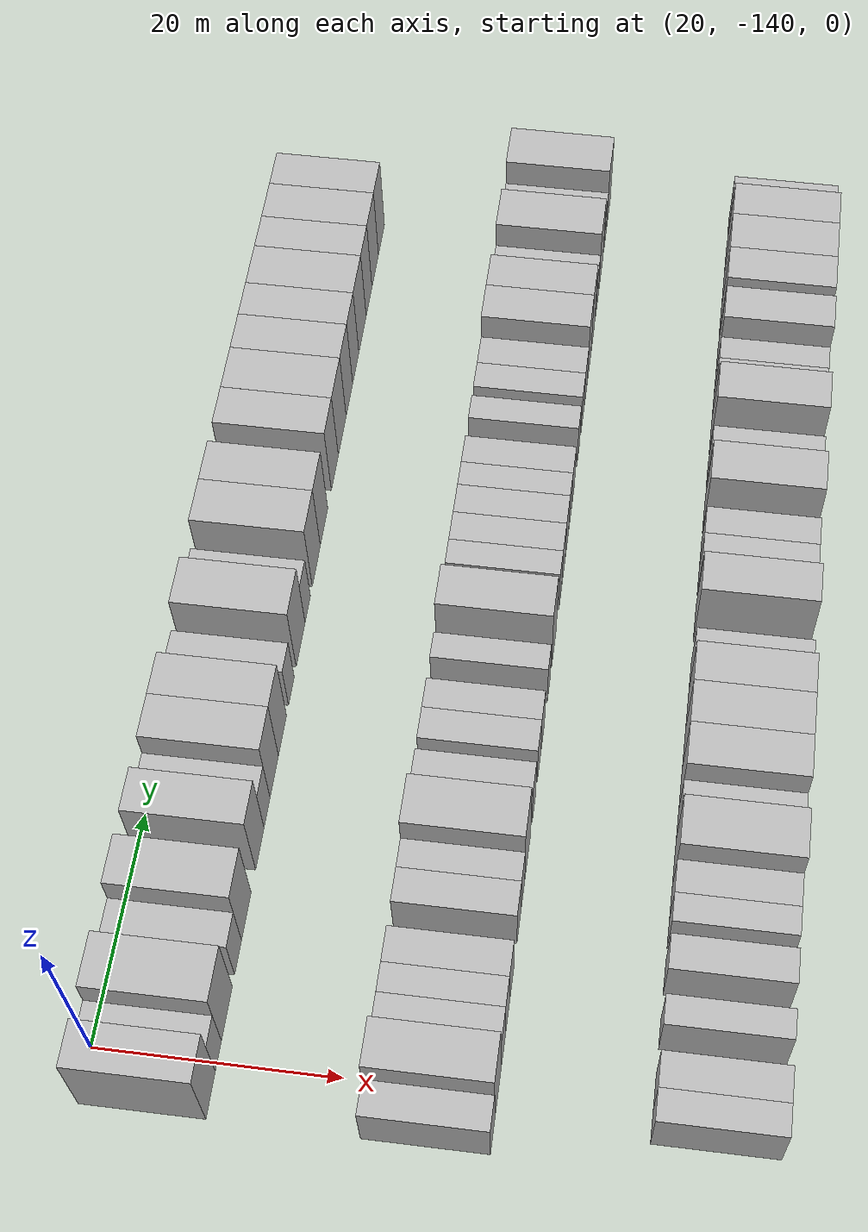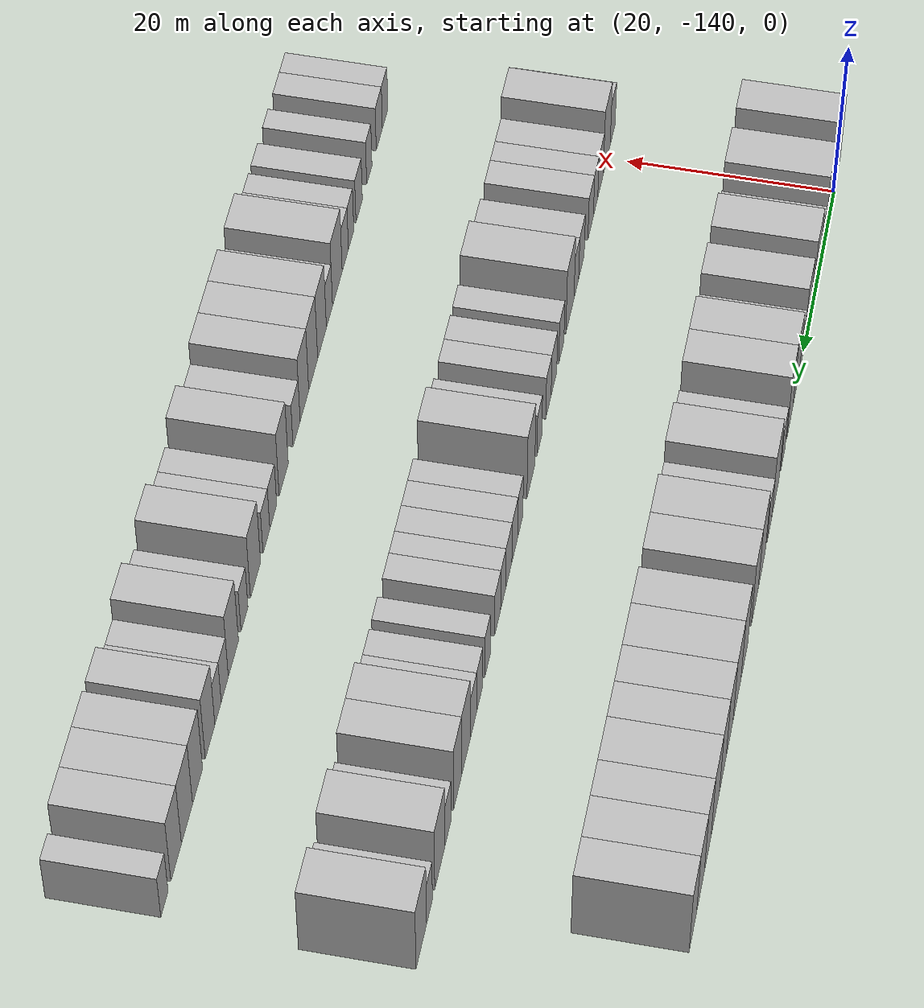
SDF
<sdf version="1.6">
 <world name="default">
  <model name="building_29">
   <static>1</static>
   <pose>25.0000 -142.5666 0 0.000000 0.000000 0.000000</pose>
   <link name="link">
    <pose>0 0 4.50 0 0 0</pose>
    <collision name="collision"><geometry><box><size>10.0000 3.7375 9.0000</size></box></geometry></collision>
    <visual name="visual">
     <cast_shadows>0</cast_shadows>
     <geometry><box><size>10.0000 3.7375 9.0000</size></box></geometry>
     <material>
      <script>
       <uri>model://HANNAS_wall/materials/scripts</uri>
       <uri>model://HANNAS_wall/materials/textures</uri>
       <name>vrc/HANNAS_wall</name>
      </script>
     </material>
    </visual>
   </link>
  </model>
  <model name="building_30">
   <static>1</static>
   <pose>25.0000 -139.4617 0 0.000000 0.000000 0.000000</pose>
   <link name="link">
    <pose>0 0 3.00 0 0 0</pose>
    <collision name="collision"><geometry><box><size>10.0000 2.4724 6.0000</size></box></geometry></collision>
    <visual name="visual">
     <cast_shadows>0</cast_shadows>
     <geometry><box><size>10.0000 2.4724 6.0000</size></box></geometry>
     <material>
      <script>
       <uri>model://HANNAS_wall/materials/scripts</uri>
       <uri>model://HANNAS_wall/materials/textures</uri>
       <name>vrc/HANNAS_wall</name>
      </script>
     </material>
    </visual>
   </link>
  </model>
  <model name="building_31">
   <static>1</static>
   <pose>25.0000 -135.9966 0 0.000000 0.000000 0.000000</pose>
   <link name="link">
    <pose>0 0 4.50 0 0 0</pose>
    <collision name="collision"><geometry><box><size>10.0000 4.4577 9.0000</size></box></geometry></collision>
    <visual name="visual">
     <cast_shadows>0</cast_shadows>
     <geometry><box><size>10.0000 4.4577 9.0000</size></box></geometry>
     <material>
      <script>
       <uri>model://HANNAS_wall/materials/scripts</uri>
       <uri>model://HANNAS_wall/materials/textures</uri>
       <name>vrc/HANNAS_wall</name>
      </script>
     </material>
    </visual>
   </link>
  </model>
  <model name="building_32">
   <static>1</static>
   <pose>25.0000 -131.3176 0 0.000000 0.000000 0.000000</pose>
   <link name="link">
    <pose>0 0 3.00 0 0 0</pose>
    <collision name="collision"><geometry><box><size>10.0000 2.9004 6.0000</size></box></geometry></collision>
    <visual name="visual">
     <cast_shadows>0</cast_shadows>
     <geometry><box><size>10.0000 2.9004 6.0000</size></box></geometry>
     <material>
      <script>
       <uri>model://HANNAS_wall/materials/scripts</uri>
       <uri>model://HANNAS_wall/materials/textures</uri>
       <name>vrc/HANNAS_wall</name>
      </script>
     </material>
    </visual>
   </link>
  </model>
  <model name="building_33">
   <static>1</static>
   <pose>25.0000 -127.7929 0 0.000000 0.000000 0.000000</pose>
   <link name="link">
    <pose>0 0 4.50 0 0 0</pose>
    <collision name="collision"><geometry><box><size>10.0000 4.1490 9.0000</size></box></geometry></collision>
    <visual name="visual">
     <cast_shadows>0</cast_shadows>
     <geometry><box><size>10.0000 4.1490 9.0000</size></box></geometry>
     <material>
      <script>
       <uri>model://HANNAS_wall/materials/scripts</uri>
       <uri>model://HANNAS_wall/materials/textures</uri>
       <name>vrc/HANNAS_wall</name>
      </script>
     </material>
    </visual>
   </link>
  </model>
  <model name="building_34">
   <static>1</static>
   <pose>25.0000 -121.8239 0 0.000000 0.000000 0.000000</pose>
   <link name="link">
    <pose>0 0 4.50 0 0 0</pose>
    <collision name="collision"><geometry><box><size>10.0000 3.7891 9.0000</size></box></geometry></collision>
    <visual name="visual">
     <cast_shadows>0</cast_shadows>
     <geometry><box><size>10.0000 3.7891 9.0000</size></box></geometry>
     <material>
      <script>
       <uri>model://HANNAS_wall/materials/scripts</uri>
       <uri>model://HANNAS_wall/materials/textures</uri>
       <name>vrc/HANNAS_wall</name>
      </script>
     </material>
    </visual>
   </link>
  </model>
  <model name="building_35">
   <static>1</static>
   <pose>25.0000 -118.5579 0 0.000000 0.000000 0.000000</pose>
   <link name="link">
    <pose>0 0 3.00 0 0 0</pose>
    <collision name="collision"><geometry><box><size>10.0000 2.7430 6.0000</size></box></geometry></collision>
    <visual name="visual">
     <cast_shadows>0</cast_shadows>
     <geometry><box><size>10.0000 2.7430 6.0000</size></box></geometry>
     <material>
      <script>
       <uri>model://HANNAS_wall/materials/scripts</uri>
       <uri>model://HANNAS_wall/materials/textures</uri>
       <name>vrc/HANNAS_wall</name>
      </script>
     </material>
    </visual>
   </link>
  </model>
  <model name="building_36">
   <static>1</static>
   <pose>25.0000 -115.2265 0 0.000000 0.000000 0.000000</pose>
   <link name="link">
    <pose>0 0 4.50 0 0 0</pose>
    <collision name="collision"><geometry><box><size>10.0000 3.9197 9.0000</size></box></geometry></collision>
    <visual name="visual">
     <cast_shadows>0</cast_shadows>
     <geometry><box><size>10.0000 3.9197 9.0000</size></box></geometry>
     <material>
      <script>
       <uri>model://HANNAS_wall/materials/scripts</uri>
       <uri>model://HANNAS_wall/materials/textures</uri>
       <name>vrc/HANNAS_wall</name>
      </script>
     </material>
    </visual>
   </link>
  </model>
  <model name="building_37">
   <static>1</static>
   <pose>25.0000 -111.3429 0 0.000000 0.000000 0.000000</pose>
   <link name="link">
    <pose>0 0 4.50 0 0 0</pose>
    <collision name="collision"><geometry><box><size>10.0000 3.8475 9.0000</size></box></geometry></collision>
    <visual name="visual">
     <cast_shadows>0</cast_shadows>
     <geometry><box><size>10.0000 3.8475 9.0000</size></box></geometry>
     <material>
      <script>
       <uri>model://HANNAS_wall/materials/scripts</uri>
       <uri>model://HANNAS_wall/materials/textures</uri>
       <name>vrc/HANNAS_wall</name>
      </script>
     </material>
    </visual>
   </link>
  </model>
  <model name="building_38">
   <static>1</static>
   <pose>25.0000 -107.0256 0 0.000000 0.000000 0.000000</pose>
   <link name="link">
    <pose>0 0 3.00 0 0 0</pose>
    <collision name="collision"><geometry><box><size>10.0000 2.7871 6.0000</size></box></geometry></collision>
    <visual name="visual">
     <cast_shadows>0</cast_shadows>
     <geometry><box><size>10.0000 2.7871 6.0000</size></box></geometry>
     <material>
      <script>
       <uri>model://HANNAS_wall/materials/scripts</uri>
       <uri>model://HANNAS_wall/materials/textures</uri>
       <name>vrc/HANNAS_wall</name>
      </script>
     </material>
    </visual>
   </link>
  </model>
  <model name="building_39">
   <static>1</static>
   <pose>25.0000 -102.3969 0 0.000000 0.000000 0.000000</pose>
   <link name="link">
    <pose>0 0 4.50 0 0 0</pose>
    <collision name="collision"><geometry><box><size>10.0000 4.4704 9.0000</size></box></geometry></collision>
    <visual name="visual">
     <cast_shadows>0</cast_shadows>
     <geometry><box><size>10.0000 4.4704 9.0000</size></box></geometry>
     <material>
      <script>
       <uri>model://HANNAS_wall/materials/scripts</uri>
       <uri>model://HANNAS_wall/materials/textures</uri>
       <name>vrc/HANNAS_wall</name>
      </script>
     </material>
    </visual>
   </link>
  </model>
  <model name="building_40">
   <static>1</static>
   <pose>25.0000 -98.7976 0 0.000000 0.000000 0.000000</pose>
   <link name="link">
    <pose>0 0 3.00 0 0 0</pose>
    <collision name="collision"><geometry><box><size>10.0000 2.7282 6.0000</size></box></geometry></collision>
    <visual name="visual">
     <cast_shadows>0</cast_shadows>
     <geometry><box><size>10.0000 2.7282 6.0000</size></box></geometry>
     <material>
      <script>
       <uri>model://HANNAS_wall/materials/scripts</uri>
       <uri>model://HANNAS_wall/materials/textures</uri>
       <name>vrc/HANNAS_wall</name>
      </script>
     </material>
    </visual>
   </link>
  </model>
  <model name="building_41">
   <static>1</static>
   <pose>25.0000 -94.2964 0 0.000000 0.000000 0.000000</pose>
   <link name="link">
    <pose>0 0 4.50 0 0 0</pose>
    <collision name="collision"><geometry><box><size>10.0000 4.2742 9.0000</size></box></geometry></collision>
    <visual name="visual">
     <cast_shadows>0</cast_shadows>
     <geometry><box><size>10.0000 4.2742 9.0000</size></box></geometry>
     <material>
      <script>
       <uri>model://HANNAS_wall/materials/scripts</uri>
       <uri>model://HANNAS_wall/materials/textures</uri>
       <name>vrc/HANNAS_wall</name>
      </script>
     </material>
    </visual>
   </link>
  </model>
  <model name="building_42">
   <static>1</static>
   <pose>25.0000 -90.1512 0 0.000000 0.000000 0.000000</pose>
   <link name="link">
    <pose>0 0 4.50 0 0 0</pose>
    <collision name="collision"><geometry><box><size>10.0000 4.0164 9.0000</size></box></geometry></collision>
    <visual name="visual">
     <cast_shadows>0</cast_shadows>
     <geometry><box><size>10.0000 4.0164 9.0000</size></box></geometry>
     <material>
      <script>
       <uri>model://HANNAS_wall/materials/scripts</uri>
       <uri>model://HANNAS_wall/materials/textures</uri>
       <name>vrc/HANNAS_wall</name>
      </script>
     </material>
    </visual>
   </link>
  </model>
  <model name="building_43">
   <static>1</static>
   <pose>25.0000 -84.1910 0 0.000000 0.000000 0.000000</pose>
   <link name="link">
    <pose>0 0 4.50 0 0 0</pose>
    <collision name="collision"><geometry><box><size>10.0000 3.9040 9.0000</size></box></geometry></collision>
    <visual name="visual">
     <cast_shadows>0</cast_shadows>
     <geometry><box><size>10.0000 3.9040 9.0000</size></box></geometry>
     <material>
      <script>
       <uri>model://HANNAS_wall/materials/scripts</uri>
       <uri>model://HANNAS_wall/materials/textures</uri>
       <name>vrc/HANNAS_wall</name>
      </script>
     </material>
    </visual>
   </link>
  </model>
  <model name="building_44">
   <static>1</static>
   <pose>25.0000 -80.0075 0 0.000000 0.000000 0.000000</pose>
   <link name="link">
    <pose>0 0 4.50 0 0 0</pose>
    <collision name="collision"><geometry><box><size>10.0000 4.4628 9.0000</size></box></geometry></collision>
    <visual name="visual">
     <cast_shadows>0</cast_shadows>
     <geometry><box><size>10.0000 4.4628 9.0000</size></box></geometry>
     <material>
      <script>
       <uri>model://HANNAS_wall/materials/scripts</uri>
       <uri>model://HANNAS_wall/materials/textures</uri>
       <name>vrc/HANNAS_wall</name>
      </script>
     </material>
    </visual>
   </link>
  </model>
  <model name="building_45">
   <static>1</static>
   <pose>25.0000 -75.8572 0 0.000000 0.000000 0.000000</pose>
   <link name="link">
    <pose>0 0 4.50 0 0 0</pose>
    <collision name="collision"><geometry><box><size>10.0000 3.8377 9.0000</size></box></geometry></collision>
    <visual name="visual">
     <cast_shadows>0</cast_shadows>
     <geometry><box><size>10.0000 3.8377 9.0000</size></box></geometry>
     <material>
      <script>
       <uri>model://HANNAS_wall/materials/scripts</uri>
       <uri>model://HANNAS_wall/materials/textures</uri>
       <name>vrc/HANNAS_wall</name>
      </script>
     </material>
    </visual>
   </link>
  </model>
  <model name="building_46">
   <static>1</static>
   <pose>25.0000 -72.0961 0 0.000000 0.000000 0.000000</pose>
   <link name="link">
    <pose>0 0 4.50 0 0 0</pose>
    <collision name="collision"><geometry><box><size>10.0000 3.6846 9.0000</size></box></geometry></collision>
    <visual name="visual">
     <cast_shadows>0</cast_shadows>
     <geometry><box><size>10.0000 3.6846 9.0000</size></box></geometry>
     <material>
      <script>
       <uri>model://HANNAS_wall/materials/scripts</uri>
       <uri>model://HANNAS_wall/materials/textures</uri>
       <name>vrc/HANNAS_wall</name>
      </script>
     </material>
    </visual>
   </link>
  </model>
  <model name="building_47">
   <static>1</static>
   <pose>25.0000 -68.0348 0 0.000000 0.000000 0.000000</pose>
   <link name="link">
    <pose>0 0 4.50 0 0 0</pose>
    <collision name="collision"><geometry><box><size>10.0000 4.4380 9.0000</size></box></geometry></collision>
    <visual name="visual">
     <cast_shadows>0</cast_shadows>
     <geometry><box><size>10.0000 4.4380 9.0000</size></box></geometry>
     <material>
      <script>
       <uri>model://HANNAS_wall/materials/scripts</uri>
       <uri>model://HANNAS_wall/materials/textures</uri>
       <name>vrc/HANNAS_wall</name>
      </script>
     </material>
    </visual>
   </link>
  </model>
  <model name="building_48">
   <static>1</static>
   <pose>25.0000 -64.0015 0 0.000000 0.000000 0.000000</pose>
   <link name="link">
    <pose>0 0 4.50 0 0 0</pose>
    <collision name="collision"><geometry><box><size>10.0000 3.6286 9.0000</size></box></geometry></collision>
    <visual name="visual">
     <cast_shadows>0</cast_shadows>
     <geometry><box><size>10.0000 3.6286 9.0000</size></box></geometry>
     <material>
      <script>
       <uri>model://HANNAS_wall/materials/scripts</uri>
       <uri>model://HANNAS_wall/materials/textures</uri>
       <name>vrc/HANNAS_wall</name>
      </script>
     </material>
    </visual>
   </link>
  </model>
  <model name="building_49">
   <static>1</static>
   <pose>25.0000 -60.1346 0 0.000000 0.000000 0.000000</pose>
   <link name="link">
    <pose>0 0 4.50 0 0 0</pose>
    <collision name="collision"><geometry><box><size>10.0000 4.1053 9.0000</size></box></geometry></collision>
    <visual name="visual">
     <cast_shadows>0</cast_shadows>
     <geometry><box><size>10.0000 4.1053 9.0000</size></box></geometry>
     <material>
      <script>
       <uri>model://HANNAS_wall/materials/scripts</uri>
       <uri>model://HANNAS_wall/materials/textures</uri>
       <name>vrc/HANNAS_wall</name>
      </script>
     </material>
    </visual>
   </link>
  </model>
  <model name="building_50">
   <static>1</static>
   <pose>25.0000 -56.1384 0 0.000000 0.000000 0.000000</pose>
   <link name="link">
    <pose>0 0 4.50 0 0 0</pose>
    <collision name="collision"><geometry><box><size>10.0000 3.8869 9.0000</size></box></geometry></collision>
    <visual name="visual">
     <cast_shadows>0</cast_shadows>
     <geometry><box><size>10.0000 3.8869 9.0000</size></box></geometry>
     <material>
      <script>
       <uri>model://HANNAS_wall/materials/scripts</uri>
       <uri>model://HANNAS_wall/materials/textures</uri>
       <name>vrc/HANNAS_wall</name>
      </script>
     </material>
    </visual>
   </link>
  </model>
  <model name="building_146">
   <static>1</static>
   <pose>47.0000 -143.0627 0 0.000000 0.000000 0.000000</pose>
   <link name="link">
    <pose>0 0 3.00 0 0 0</pose>
    <collision name="collision"><geometry><box><size>10.0000 2.7829 6.0000</size></box></geometry></collision>
    <visual name="visual">
     <cast_shadows>0</cast_shadows>
     <geometry><box><size>10.0000 2.7829 6.0000</size></box></geometry>
     <material>
      <script>
       <uri>model://HANNAS_wall/materials/scripts</uri>
       <uri>model://HANNAS_wall/materials/textures</uri>
       <name>vrc/HANNAS_wall</name>
      </script>
     </material>
    </visual>
   </link>
  </model>
  <model name="building_147">
   <static>1</static>
   <pose>47.0000 -139.7377 0 0.000000 0.000000 0.000000</pose>
   <link name="link">
    <pose>0 0 4.50 0 0 0</pose>
    <collision name="collision"><geometry><box><size>10.0000 3.8670 9.0000</size></box></geometry></collision>
    <visual name="visual">
     <cast_shadows>0</cast_shadows>
     <geometry><box><size>10.0000 3.8670 9.0000</size></box></geometry>
     <material>
      <script>
       <uri>model://HANNAS_wall/materials/scripts</uri>
       <uri>model://HANNAS_wall/materials/textures</uri>
       <name>vrc/HANNAS_wall</name>
      </script>
     </material>
    </visual>
   </link>
  </model>
  <model name="building_148">
   <static>1</static>
   <pose>47.0000 -136.3143 0 0.000000 0.000000 0.000000</pose>
   <link name="link">
    <pose>0 0 3.00 0 0 0</pose>
    <collision name="collision"><geometry><box><size>10.0000 2.9798 6.0000</size></box></geometry></collision>
    <visual name="visual">
     <cast_shadows>0</cast_shadows>
     <geometry><box><size>10.0000 2.9798 6.0000</size></box></geometry>
     <material>
      <script>
       <uri>model://HANNAS_wall/materials/scripts</uri>
       <uri>model://HANNAS_wall/materials/textures</uri>
       <name>vrc/HANNAS_wall</name>
      </script>
     </material>
    </visual>
   </link>
  </model>
  <model name="building_149">
   <static>1</static>
   <pose>47.0000 -133.6075 0 0.000000 0.000000 0.000000</pose>
   <link name="link">
    <pose>0 0 3.00 0 0 0</pose>
    <collision name="collision"><geometry><box><size>10.0000 2.4339 6.0000</size></box></geometry></collision>
    <visual name="visual">
     <cast_shadows>0</cast_shadows>
     <geometry><box><size>10.0000 2.4339 6.0000</size></box></geometry>
     <material>
      <script>
       <uri>model://HANNAS_wall/materials/scripts</uri>
       <uri>model://HANNAS_wall/materials/textures</uri>
       <name>vrc/HANNAS_wall</name>
      </script>
     </material>
    </visual>
   </link>
  </model>
  <model name="building_150">
   <static>1</static>
   <pose>47.0000 -130.9199 0 0.000000 0.000000 0.000000</pose>
   <link name="link">
    <pose>0 0 3.00 0 0 0</pose>
    <collision name="collision"><geometry><box><size>10.0000 2.9413 6.0000</size></box></geometry></collision>
    <visual name="visual">
     <cast_shadows>0</cast_shadows>
     <geometry><box><size>10.0000 2.9413 6.0000</size></box></geometry>
     <material>
      <script>
       <uri>model://HANNAS_wall/materials/scripts</uri>
       <uri>model://HANNAS_wall/materials/textures</uri>
       <name>vrc/HANNAS_wall</name>
      </script>
     </material>
    </visual>
   </link>
  </model>
  <model name="building_151">
   <static>1</static>
   <pose>47.0000 -125.9823 0 0.000000 0.000000 0.000000</pose>
   <link name="link">
    <pose>0 0 3.00 0 0 0</pose>
    <collision name="collision"><geometry><box><size>10.0000 2.9339 6.0000</size></box></geometry></collision>
    <visual name="visual">
     <cast_shadows>0</cast_shadows>
     <geometry><box><size>10.0000 2.9339 6.0000</size></box></geometry>
     <material>
      <script>
       <uri>model://HANNAS_wall/materials/scripts</uri>
       <uri>model://HANNAS_wall/materials/textures</uri>
       <name>vrc/HANNAS_wall</name>
      </script>
     </material>
    </visual>
   </link>
  </model>
  <model name="building_152">
   <static>1</static>
   <pose>47.0000 -123.2834 0 0.000000 0.000000 0.000000</pose>
   <link name="link">
    <pose>0 0 3.00 0 0 0</pose>
    <collision name="collision"><geometry><box><size>10.0000 2.4640 6.0000</size></box></geometry></collision>
    <visual name="visual">
     <cast_shadows>0</cast_shadows>
     <geometry><box><size>10.0000 2.4640 6.0000</size></box></geometry>
     <material>
      <script>
       <uri>model://HANNAS_wall/materials/scripts</uri>
       <uri>model://HANNAS_wall/materials/textures</uri>
       <name>vrc/HANNAS_wall</name>
      </script>
     </material>
    </visual>
   </link>
  </model>
  <model name="building_153">
   <static>1</static>
   <pose>47.0000 -119.9198 0 0.000000 0.000000 0.000000</pose>
   <link name="link">
    <pose>0 0 4.50 0 0 0</pose>
    <collision name="collision"><geometry><box><size>10.0000 4.2632 9.0000</size></box></geometry></collision>
    <visual name="visual">
     <cast_shadows>0</cast_shadows>
     <geometry><box><size>10.0000 4.2632 9.0000</size></box></geometry>
     <material>
      <script>
       <uri>model://HANNAS_wall/materials/scripts</uri>
       <uri>model://HANNAS_wall/materials/textures</uri>
       <name>vrc/HANNAS_wall</name>
      </script>
     </material>
    </visual>
   </link>
  </model>
  <model name="building_154">
   <static>1</static>
   <pose>47.0000 -115.4362 0 0.000000 0.000000 0.000000</pose>
   <link name="link">
    <pose>0 0 3.00 0 0 0</pose>
    <collision name="collision"><geometry><box><size>10.0000 2.7040 6.0000</size></box></geometry></collision>
    <visual name="visual">
     <cast_shadows>0</cast_shadows>
     <geometry><box><size>10.0000 2.7040 6.0000</size></box></geometry>
     <material>
      <script>
       <uri>model://HANNAS_wall/materials/scripts</uri>
       <uri>model://HANNAS_wall/materials/textures</uri>
       <name>vrc/HANNAS_wall</name>
      </script>
     </material>
    </visual>
   </link>
  </model>
  <model name="building_155">
   <static>1</static>
   <pose>47.0000 -111.6496 0 0.000000 0.000000 0.000000</pose>
   <link name="link">
    <pose>0 0 3.00 0 0 0</pose>
    <collision name="collision"><geometry><box><size>10.0000 2.8691 6.0000</size></box></geometry></collision>
    <visual name="visual">
     <cast_shadows>0</cast_shadows>
     <geometry><box><size>10.0000 2.8691 6.0000</size></box></geometry>
     <material>
      <script>
       <uri>model://HANNAS_wall/materials/scripts</uri>
       <uri>model://HANNAS_wall/materials/textures</uri>
       <name>vrc/HANNAS_wall</name>
      </script>
     </material>
    </visual>
   </link>
  </model>
  <model name="building_156">
   <static>1</static>
   <pose>47.0000 -108.8562 0 0.000000 0.000000 0.000000</pose>
   <link name="link">
    <pose>0 0 3.00 0 0 0</pose>
    <collision name="collision"><geometry><box><size>10.0000 2.7176 6.0000</size></box></geometry></collision>
    <visual name="visual">
     <cast_shadows>0</cast_shadows>
     <geometry><box><size>10.0000 2.7176 6.0000</size></box></geometry>
     <material>
      <script>
       <uri>model://HANNAS_wall/materials/scripts</uri>
       <uri>model://HANNAS_wall/materials/textures</uri>
       <name>vrc/HANNAS_wall</name>
      </script>
     </material>
    </visual>
   </link>
  </model>
  <model name="building_157">
   <static>1</static>
   <pose>47.0000 -104.2866 0 0.000000 0.000000 0.000000</pose>
   <link name="link">
    <pose>0 0 3.00 0 0 0</pose>
    <collision name="collision"><geometry><box><size>10.0000 2.4216 6.0000</size></box></geometry></collision>
    <visual name="visual">
     <cast_shadows>0</cast_shadows>
     <geometry><box><size>10.0000 2.4216 6.0000</size></box></geometry>
     <material>
      <script>
       <uri>model://HANNAS_wall/materials/scripts</uri>
       <uri>model://HANNAS_wall/materials/textures</uri>
       <name>vrc/HANNAS_wall</name>
      </script>
     </material>
    </visual>
   </link>
  </model>
  <model name="building_158">
   <static>1</static>
   <pose>47.0000 -100.1305 0 0.000000 0.000000 0.000000</pose>
   <link name="link">
    <pose>0 0 4.50 0 0 0</pose>
    <collision name="collision"><geometry><box><size>10.0000 3.8905 9.0000</size></box></geometry></collision>
    <visual name="visual">
     <cast_shadows>0</cast_shadows>
     <geometry><box><size>10.0000 3.8905 9.0000</size></box></geometry>
     <material>
      <script>
       <uri>model://HANNAS_wall/materials/scripts</uri>
       <uri>model://HANNAS_wall/materials/textures</uri>
       <name>vrc/HANNAS_wall</name>
      </script>
     </material>
    </visual>
   </link>
  </model>
  <model name="building_159">
   <static>1</static>
   <pose>47.0000 -94.9614 0 0.000000 0.000000 0.000000</pose>
   <link name="link">
    <pose>0 0 3.00 0 0 0</pose>
    <collision name="collision"><geometry><box><size>10.0000 2.4477 6.0000</size></box></geometry></collision>
    <visual name="visual">
     <cast_shadows>0</cast_shadows>
     <geometry><box><size>10.0000 2.4477 6.0000</size></box></geometry>
     <material>
      <script>
       <uri>model://HANNAS_wall/materials/scripts</uri>
       <uri>model://HANNAS_wall/materials/textures</uri>
       <name>vrc/HANNAS_wall</name>
      </script>
     </material>
    </visual>
   </link>
  </model>
  <model name="building_160">
   <static>1</static>
   <pose>47.0000 -92.3160 0 0.000000 0.000000 0.000000</pose>
   <link name="link">
    <pose>0 0 3.00 0 0 0</pose>
    <collision name="collision"><geometry><box><size>10.0000 2.8431 6.0000</size></box></geometry></collision>
    <visual name="visual">
     <cast_shadows>0</cast_shadows>
     <geometry><box><size>10.0000 2.8431 6.0000</size></box></geometry>
     <material>
      <script>
       <uri>model://HANNAS_wall/materials/scripts</uri>
       <uri>model://HANNAS_wall/materials/textures</uri>
       <name>vrc/HANNAS_wall</name>
      </script>
     </material>
    </visual>
   </link>
  </model>
  <model name="building_161">
   <static>1</static>
   <pose>47.0000 -89.4443 0 0.000000 0.000000 0.000000</pose>
   <link name="link">
    <pose>0 0 3.00 0 0 0</pose>
    <collision name="collision"><geometry><box><size>10.0000 2.9003 6.0000</size></box></geometry></collision>
    <visual name="visual">
     <cast_shadows>0</cast_shadows>
     <geometry><box><size>10.0000 2.9003 6.0000</size></box></geometry>
     <material>
      <script>
       <uri>model://HANNAS_wall/materials/scripts</uri>
       <uri>model://HANNAS_wall/materials/textures</uri>
       <name>vrc/HANNAS_wall</name>
      </script>
     </material>
    </visual>
   </link>
  </model>
  <model name="building_162">
   <static>1</static>
   <pose>47.0000 -86.7812 0 0.000000 0.000000 0.000000</pose>
   <link name="link">
    <pose>0 0 3.00 0 0 0</pose>
    <collision name="collision"><geometry><box><size>10.0000 2.4259 6.0000</size></box></geometry></collision>
    <visual name="visual">
     <cast_shadows>0</cast_shadows>
     <geometry><box><size>10.0000 2.4259 6.0000</size></box></geometry>
     <material>
      <script>
       <uri>model://HANNAS_wall/materials/scripts</uri>
       <uri>model://HANNAS_wall/materials/textures</uri>
       <name>vrc/HANNAS_wall</name>
      </script>
     </material>
    </visual>
   </link>
  </model>
  <model name="building_163">
   <static>1</static>
   <pose>47.0000 -84.1574 0 0.000000 0.000000 0.000000</pose>
   <link name="link">
    <pose>0 0 3.00 0 0 0</pose>
    <collision name="collision"><geometry><box><size>10.0000 2.8218 6.0000</size></box></geometry></collision>
    <visual name="visual">
     <cast_shadows>0</cast_shadows>
     <geometry><box><size>10.0000 2.8218 6.0000</size></box></geometry>
     <material>
      <script>
       <uri>model://HANNAS_wall/materials/scripts</uri>
       <uri>model://HANNAS_wall/materials/textures</uri>
       <name>vrc/HANNAS_wall</name>
      </script>
     </material>
    </visual>
   </link>
  </model>
  <model name="building_164">
   <static>1</static>
   <pose>47.0000 -79.4960 0 0.000000 0.000000 0.000000</pose>
   <link name="link">
    <pose>0 0 3.00 0 0 0</pose>
    <collision name="collision"><geometry><box><size>10.0000 2.5009 6.0000</size></box></geometry></collision>
    <visual name="visual">
     <cast_shadows>0</cast_shadows>
     <geometry><box><size>10.0000 2.5009 6.0000</size></box></geometry>
     <material>
      <script>
       <uri>model://HANNAS_wall/materials/scripts</uri>
       <uri>model://HANNAS_wall/materials/textures</uri>
       <name>vrc/HANNAS_wall</name>
      </script>
     </material>
    </visual>
   </link>
  </model>
  <model name="building_165">
   <static>1</static>
   <pose>47.0000 -75.8756 0 0.000000 0.000000 0.000000</pose>
   <link name="link">
    <pose>0 0 3.00 0 0 0</pose>
    <collision name="collision"><geometry><box><size>10.0000 2.7401 6.0000</size></box></geometry></collision>
    <visual name="visual">
     <cast_shadows>0</cast_shadows>
     <geometry><box><size>10.0000 2.7401 6.0000</size></box></geometry>
     <material>
      <script>
       <uri>model://HANNAS_wall/materials/scripts</uri>
       <uri>model://HANNAS_wall/materials/textures</uri>
       <name>vrc/HANNAS_wall</name>
      </script>
     </material>
    </visual>
   </link>
  </model>
  <model name="building_166">
   <static>1</static>
   <pose>47.0000 -73.0241 0 0.000000 0.000000 0.000000</pose>
   <link name="link">
    <pose>0 0 3.00 0 0 0</pose>
    <collision name="collision"><geometry><box><size>10.0000 2.9629 6.0000</size></box></geometry></collision>
    <visual name="visual">
     <cast_shadows>0</cast_shadows>
     <geometry><box><size>10.0000 2.9629 6.0000</size></box></geometry>
     <material>
      <script>
       <uri>model://HANNAS_wall/materials/scripts</uri>
       <uri>model://HANNAS_wall/materials/textures</uri>
       <name>vrc/HANNAS_wall</name>
      </script>
     </material>
    </visual>
   </link>
  </model>
  <model name="building_167">
   <static>1</static>
   <pose>47.0000 -69.6774 0 0.000000 0.000000 0.000000</pose>
   <link name="link">
    <pose>0 0 4.50 0 0 0</pose>
    <collision name="collision"><geometry><box><size>10.0000 3.7306 9.0000</size></box></geometry></collision>
    <visual name="visual">
     <cast_shadows>0</cast_shadows>
     <geometry><box><size>10.0000 3.7306 9.0000</size></box></geometry>
     <material>
      <script>
       <uri>model://HANNAS_wall/materials/scripts</uri>
       <uri>model://HANNAS_wall/materials/textures</uri>
       <name>vrc/HANNAS_wall</name>
      </script>
     </material>
    </visual>
   </link>
  </model>
  <model name="building_168">
   <static>1</static>
   <pose>47.0000 -66.0101 0 0.000000 0.000000 0.000000</pose>
   <link name="link">
    <pose>0 0 4.50 0 0 0</pose>
    <collision name="collision"><geometry><box><size>10.0000 3.6039 9.0000</size></box></geometry></collision>
    <visual name="visual">
     <cast_shadows>0</cast_shadows>
     <geometry><box><size>10.0000 3.6039 9.0000</size></box></geometry>
     <material>
      <script>
       <uri>model://HANNAS_wall/materials/scripts</uri>
       <uri>model://HANNAS_wall/materials/textures</uri>
       <name>vrc/HANNAS_wall</name>
      </script>
     </material>
    </visual>
   </link>
  </model>
  <model name="building_169">
   <static>1</static>
   <pose>47.0000 -61.8660 0 0.000000 0.000000 0.000000</pose>
   <link name="link">
    <pose>0 0 3.00 0 0 0</pose>
    <collision name="collision"><geometry><box><size>10.0000 2.6842 6.0000</size></box></geometry></collision>
    <visual name="visual">
     <cast_shadows>0</cast_shadows>
     <geometry><box><size>10.0000 2.6842 6.0000</size></box></geometry>
     <material>
      <script>
       <uri>model://HANNAS_wall/materials/scripts</uri>
       <uri>model://HANNAS_wall/materials/textures</uri>
       <name>vrc/HANNAS_wall</name>
      </script>
     </material>
    </visual>
   </link>
  </model>
  <model name="building_170">
   <static>1</static>
   <pose>47.0000 -58.3177 0 0.000000 0.000000 0.000000</pose>
   <link name="link">
    <pose>0 0 4.50 0 0 0</pose>
    <collision name="collision"><geometry><box><size>10.0000 4.4126 9.0000</size></box></geometry></collision>
    <visual name="visual">
     <cast_shadows>0</cast_shadows>
     <geometry><box><size>10.0000 4.4126 9.0000</size></box></geometry>
     <material>
      <script>
       <uri>model://HANNAS_wall/materials/scripts</uri>
       <uri>model://HANNAS_wall/materials/textures</uri>
       <name>vrc/HANNAS_wall</name>
      </script>
     </material>
    </visual>
   </link>
  </model>
  <model name="building_171">
   <static>1</static>
   <pose>47.0000 -53.8831 0 0.000000 0.000000 0.000000</pose>
   <link name="link">
    <pose>0 0 3.00 0 0 0</pose>
    <collision name="collision"><geometry><box><size>10.0000 2.4565 6.0000</size></box></geometry></collision>
    <visual name="visual">
     <cast_shadows>0</cast_shadows>
     <geometry><box><size>10.0000 2.4565 6.0000</size></box></geometry>
     <material>
      <script>
       <uri>model://HANNAS_wall/materials/scripts</uri>
       <uri>model://HANNAS_wall/materials/textures</uri>
       <name>vrc/HANNAS_wall</name>
      </script>
     </material>
    </visual>
   </link>
  </model>
  <model name="building_172">
   <static>1</static>
   <pose>47.0000 -50.4450 0 0.000000 0.000000 0.000000</pose>
   <link name="link">
    <pose>0 0 4.50 0 0 0</pose>
    <collision name="collision"><geometry><box><size>10.0000 4.4197 9.0000</size></box></geometry></collision>
    <visual name="visual">
     <cast_shadows>0</cast_shadows>
     <geometry><box><size>10.0000 4.4197 9.0000</size></box></geometry>
     <material>
      <script>
       <uri>model://HANNAS_wall/materials/scripts</uri>
       <uri>model://HANNAS_wall/materials/textures</uri>
       <name>vrc/HANNAS_wall</name>
      </script>
     </material>
    </visual>
   </link>
  </model>
  <model name="building_274">
   <static>1</static>
   <pose>69.0000 -140.8634 0 0.000000 0.000000 0.000000</pose>
   <link name="link">
    <pose>0 0 3.00 0 0 0</pose>
    <collision name="collision"><geometry><box><size>10.0000 2.5936 6.0000</size></box></geometry></collision>
    <visual name="visual">
     <cast_shadows>0</cast_shadows>
     <geometry><box><size>10.0000 2.5936 6.0000</size></box></geometry>
     <material>
      <script>
       <uri>model://HANNAS_wall/materials/scripts</uri>
       <uri>model://HANNAS_wall/materials/textures</uri>
       <name>vrc/HANNAS_wall</name>
      </script>
     </material>
    </visual>
   </link>
  </model>
  <model name="building_275">
   <static>1</static>
   <pose>69.0000 -138.1356 0 0.000000 0.000000 0.000000</pose>
   <link name="link">
    <pose>0 0 3.00 0 0 0</pose>
    <collision name="collision"><geometry><box><size>10.0000 2.8620 6.0000</size></box></geometry></collision>
    <visual name="visual">
     <cast_shadows>0</cast_shadows>
     <geometry><box><size>10.0000 2.8620 6.0000</size></box></geometry>
     <material>
      <script>
       <uri>model://HANNAS_wall/materials/scripts</uri>
       <uri>model://HANNAS_wall/materials/textures</uri>
       <name>vrc/HANNAS_wall</name>
      </script>
     </material>
    </visual>
   </link>
  </model>
  <model name="building_276">
   <static>1</static>
   <pose>69.0000 -133.4883 0 0.000000 0.000000 0.000000</pose>
   <link name="link">
    <pose>0 0 3.00 0 0 0</pose>
    <collision name="collision"><geometry><box><size>10.0000 2.4327 6.0000</size></box></geometry></collision>
    <visual name="visual">
     <cast_shadows>0</cast_shadows>
     <geometry><box><size>10.0000 2.4327 6.0000</size></box></geometry>
     <material>
      <script>
       <uri>model://HANNAS_wall/materials/scripts</uri>
       <uri>model://HANNAS_wall/materials/textures</uri>
       <name>vrc/HANNAS_wall</name>
      </script>
     </material>
    </visual>
   </link>
  </model>
  <model name="building_277">
   <static>1</static>
   <pose>69.0000 -128.8216 0 0.000000 0.000000 0.000000</pose>
   <link name="link">
    <pose>0 0 3.00 0 0 0</pose>
    <collision name="collision"><geometry><box><size>10.0000 2.9006 6.0000</size></box></geometry></collision>
    <visual name="visual">
     <cast_shadows>0</cast_shadows>
     <geometry><box><size>10.0000 2.9006 6.0000</size></box></geometry>
     <material>
      <script>
       <uri>model://HANNAS_wall/materials/scripts</uri>
       <uri>model://HANNAS_wall/materials/textures</uri>
       <name>vrc/HANNAS_wall</name>
      </script>
     </material>
    </visual>
   </link>
  </model>
  <model name="building_278">
   <static>1</static>
   <pose>69.0000 -125.1584 0 0.000000 0.000000 0.000000</pose>
   <link name="link">
    <pose>0 0 3.00 0 0 0</pose>
    <collision name="collision"><geometry><box><size>10.0000 2.4259 6.0000</size></box></geometry></collision>
    <visual name="visual">
     <cast_shadows>0</cast_shadows>
     <geometry><box><size>10.0000 2.4259 6.0000</size></box></geometry>
     <material>
      <script>
       <uri>model://HANNAS_wall/materials/scripts</uri>
       <uri>model://HANNAS_wall/materials/textures</uri>
       <name>vrc/HANNAS_wall</name>
      </script>
     </material>
    </visual>
   </link>
  </model>
  <model name="building_279">
   <static>1</static>
   <pose>69.0000 -122.5473 0 0.000000 0.000000 0.000000</pose>
   <link name="link">
    <pose>0 0 3.00 0 0 0</pose>
    <collision name="collision"><geometry><box><size>10.0000 2.7965 6.0000</size></box></geometry></collision>
    <visual name="visual">
     <cast_shadows>0</cast_shadows>
     <geometry><box><size>10.0000 2.7965 6.0000</size></box></geometry>
     <material>
      <script>
       <uri>model://HANNAS_wall/materials/scripts</uri>
       <uri>model://HANNAS_wall/materials/textures</uri>
       <name>vrc/HANNAS_wall</name>
      </script>
     </material>
    </visual>
   </link>
  </model>
  <model name="building_280">
   <static>1</static>
   <pose>69.0000 -119.0140 0 0.000000 0.000000 0.000000</pose>
   <link name="link">
    <pose>0 0 4.50 0 0 0</pose>
    <collision name="collision"><geometry><box><size>10.0000 4.2701 9.0000</size></box></geometry></collision>
    <visual name="visual">
     <cast_shadows>0</cast_shadows>
     <geometry><box><size>10.0000 4.2701 9.0000</size></box></geometry>
     <material>
      <script>
       <uri>model://HANNAS_wall/materials/scripts</uri>
       <uri>model://HANNAS_wall/materials/textures</uri>
       <name>vrc/HANNAS_wall</name>
      </script>
     </material>
    </visual>
   </link>
  </model>
  <model name="building_281">
   <static>1</static>
   <pose>69.0000 -115.5247 0 0.000000 0.000000 0.000000</pose>
   <link name="link">
    <pose>0 0 3.00 0 0 0</pose>
    <collision name="collision"><geometry><box><size>10.0000 2.7084 6.0000</size></box></geometry></collision>
    <visual name="visual">
     <cast_shadows>0</cast_shadows>
     <geometry><box><size>10.0000 2.7084 6.0000</size></box></geometry>
     <material>
      <script>
       <uri>model://HANNAS_wall/materials/scripts</uri>
       <uri>model://HANNAS_wall/materials/textures</uri>
       <name>vrc/HANNAS_wall</name>
      </script>
     </material>
    </visual>
   </link>
  </model>
  <model name="building_282">
   <static>1</static>
   <pose>69.0000 -112.2762 0 0.000000 0.000000 0.000000</pose>
   <link name="link">
    <pose>0 0 4.50 0 0 0</pose>
    <collision name="collision"><geometry><box><size>10.0000 3.7885 9.0000</size></box></geometry></collision>
    <visual name="visual">
     <cast_shadows>0</cast_shadows>
     <geometry><box><size>10.0000 3.7885 9.0000</size></box></geometry>
     <material>
      <script>
       <uri>model://HANNAS_wall/materials/scripts</uri>
       <uri>model://HANNAS_wall/materials/textures</uri>
       <name>vrc/HANNAS_wall</name>
      </script>
     </material>
    </visual>
   </link>
  </model>
  <model name="building_283">
   <static>1</static>
   <pose>69.0000 -108.4639 0 0.000000 0.000000 0.000000</pose>
   <link name="link">
    <pose>0 0 4.50 0 0 0</pose>
    <collision name="collision"><geometry><box><size>10.0000 3.8363 9.0000</size></box></geometry></collision>
    <visual name="visual">
     <cast_shadows>0</cast_shadows>
     <geometry><box><size>10.0000 3.8363 9.0000</size></box></geometry>
     <material>
      <script>
       <uri>model://HANNAS_wall/materials/scripts</uri>
       <uri>model://HANNAS_wall/materials/textures</uri>
       <name>vrc/HANNAS_wall</name>
      </script>
     </material>
    </visual>
   </link>
  </model>
  <model name="building_284">
   <static>1</static>
   <pose>69.0000 -104.7222 0 0.000000 0.000000 0.000000</pose>
   <link name="link">
    <pose>0 0 4.50 0 0 0</pose>
    <collision name="collision"><geometry><box><size>10.0000 3.6471 9.0000</size></box></geometry></collision>
    <visual name="visual">
     <cast_shadows>0</cast_shadows>
     <geometry><box><size>10.0000 3.6471 9.0000</size></box></geometry>
     <material>
      <script>
       <uri>model://HANNAS_wall/materials/scripts</uri>
       <uri>model://HANNAS_wall/materials/textures</uri>
       <name>vrc/HANNAS_wall</name>
      </script>
     </material>
    </visual>
   </link>
  </model>
  <model name="building_285">
   <static>1</static>
   <pose>69.0000 -101.4136 0 0.000000 0.000000 0.000000</pose>
   <link name="link">
    <pose>0 0 3.00 0 0 0</pose>
    <collision name="collision"><geometry><box><size>10.0000 2.9701 6.0000</size></box></geometry></collision>
    <visual name="visual">
     <cast_shadows>0</cast_shadows>
     <geometry><box><size>10.0000 2.9701 6.0000</size></box></geometry>
     <material>
      <script>
       <uri>model://HANNAS_wall/materials/scripts</uri>
       <uri>model://HANNAS_wall/materials/textures</uri>
       <name>vrc/HANNAS_wall</name>
      </script>
     </material>
    </visual>
   </link>
  </model>
  <model name="building_286">
   <static>1</static>
   <pose>69.0000 -96.0514 0 0.000000 0.000000 0.000000</pose>
   <link name="link">
    <pose>0 0 4.50 0 0 0</pose>
    <collision name="collision"><geometry><box><size>10.0000 3.7542 9.0000</size></box></geometry></collision>
    <visual name="visual">
     <cast_shadows>0</cast_shadows>
     <geometry><box><size>10.0000 3.7542 9.0000</size></box></geometry>
     <material>
      <script>
       <uri>model://HANNAS_wall/materials/scripts</uri>
       <uri>model://HANNAS_wall/materials/textures</uri>
       <name>vrc/HANNAS_wall</name>
      </script>
     </material>
    </visual>
   </link>
  </model>
  <model name="building_287">
   <static>1</static>
   <pose>69.0000 -91.7711 0 0.000000 0.000000 0.000000</pose>
   <link name="link">
    <pose>0 0 3.00 0 0 0</pose>
    <collision name="collision"><geometry><box><size>10.0000 2.8063 6.0000</size></box></geometry></collision>
    <visual name="visual">
     <cast_shadows>0</cast_shadows>
     <geometry><box><size>10.0000 2.8063 6.0000</size></box></geometry>
     <material>
      <script>
       <uri>model://HANNAS_wall/materials/scripts</uri>
       <uri>model://HANNAS_wall/materials/textures</uri>
       <name>vrc/HANNAS_wall</name>
      </script>
     </material>
    </visual>
   </link>
  </model>
  <model name="building_288">
   <static>1</static>
   <pose>69.0000 -88.9998 0 0.000000 0.000000 0.000000</pose>
   <link name="link">
    <pose>0 0 3.00 0 0 0</pose>
    <collision name="collision"><geometry><box><size>10.0000 2.7365 6.0000</size></box></geometry></collision>
    <visual name="visual">
     <cast_shadows>0</cast_shadows>
     <geometry><box><size>10.0000 2.7365 6.0000</size></box></geometry>
     <material>
      <script>
       <uri>model://HANNAS_wall/materials/scripts</uri>
       <uri>model://HANNAS_wall/materials/textures</uri>
       <name>vrc/HANNAS_wall</name>
      </script>
     </material>
    </visual>
   </link>
  </model>
  <model name="building_289">
   <static>1</static>
   <pose>69.0000 -84.6212 0 0.000000 0.000000 0.000000</pose>
   <link name="link">
    <pose>0 0 4.50 0 0 0</pose>
    <collision name="collision"><geometry><box><size>10.0000 4.0207 9.0000</size></box></geometry></collision>
    <visual name="visual">
     <cast_shadows>0</cast_shadows>
     <geometry><box><size>10.0000 4.0207 9.0000</size></box></geometry>
     <material>
      <script>
       <uri>model://HANNAS_wall/materials/scripts</uri>
       <uri>model://HANNAS_wall/materials/textures</uri>
       <name>vrc/HANNAS_wall</name>
      </script>
     </material>
    </visual>
   </link>
  </model>
  <model name="building_290">
   <static>1</static>
   <pose>69.0000 -80.2564 0 0.000000 0.000000 0.000000</pose>
   <link name="link">
    <pose>0 0 3.00 0 0 0</pose>
    <collision name="collision"><geometry><box><size>10.0000 2.7090 6.0000</size></box></geometry></collision>
    <visual name="visual">
     <cast_shadows>0</cast_shadows>
     <geometry><box><size>10.0000 2.7090 6.0000</size></box></geometry>
     <material>
      <script>
       <uri>model://HANNAS_wall/materials/scripts</uri>
       <uri>model://HANNAS_wall/materials/textures</uri>
       <name>vrc/HANNAS_wall</name>
      </script>
     </material>
    </visual>
   </link>
  </model>
  <model name="building_291">
   <static>1</static>
   <pose>69.0000 -75.9358 0 0.000000 0.000000 0.000000</pose>
   <link name="link">
    <pose>0 0 4.50 0 0 0</pose>
    <collision name="collision"><geometry><box><size>10.0000 3.9321 9.0000</size></box></geometry></collision>
    <visual name="visual">
     <cast_shadows>0</cast_shadows>
     <geometry><box><size>10.0000 3.9321 9.0000</size></box></geometry>
     <material>
      <script>
       <uri>model://HANNAS_wall/materials/scripts</uri>
       <uri>model://HANNAS_wall/materials/textures</uri>
       <name>vrc/HANNAS_wall</name>
      </script>
     </material>
    </visual>
   </link>
  </model>
  <model name="building_292">
   <static>1</static>
   <pose>69.0000 -72.6072 0 0.000000 0.000000 0.000000</pose>
   <link name="link">
    <pose>0 0 3.00 0 0 0</pose>
    <collision name="collision"><geometry><box><size>10.0000 2.7250 6.0000</size></box></geometry></collision>
    <visual name="visual">
     <cast_shadows>0</cast_shadows>
     <geometry><box><size>10.0000 2.7250 6.0000</size></box></geometry>
     <material>
      <script>
       <uri>model://HANNAS_wall/materials/scripts</uri>
       <uri>model://HANNAS_wall/materials/textures</uri>
       <name>vrc/HANNAS_wall</name>
      </script>
     </material>
    </visual>
   </link>
  </model>
  <model name="building_293">
   <static>1</static>
   <pose>69.0000 -70.0390 0 0.000000 0.000000 0.000000</pose>
   <link name="link">
    <pose>0 0 3.00 0 0 0</pose>
    <collision name="collision"><geometry><box><size>10.0000 2.4114 6.0000</size></box></geometry></collision>
    <visual name="visual">
     <cast_shadows>0</cast_shadows>
     <geometry><box><size>10.0000 2.4114 6.0000</size></box></geometry>
     <material>
      <script>
       <uri>model://HANNAS_wall/materials/scripts</uri>
       <uri>model://HANNAS_wall/materials/textures</uri>
       <name>vrc/HANNAS_wall</name>
      </script>
     </material>
    </visual>
   </link>
  </model>
  <model name="building_294">
   <static>1</static>
   <pose>69.0000 -67.0273 0 0.000000 0.000000 0.000000</pose>
   <link name="link">
    <pose>0 0 4.50 0 0 0</pose>
    <collision name="collision"><geometry><box><size>10.0000 3.6121 9.0000</size></box></geometry></collision>
    <visual name="visual">
     <cast_shadows>0</cast_shadows>
     <geometry><box><size>10.0000 3.6121 9.0000</size></box></geometry>
     <material>
      <script>
       <uri>model://HANNAS_wall/materials/scripts</uri>
       <uri>model://HANNAS_wall/materials/textures</uri>
       <name>vrc/HANNAS_wall</name>
      </script>
     </material>
    </visual>
   </link>
  </model>
  <model name="building_295">
   <static>1</static>
   <pose>69.0000 -62.3730 0 0.000000 0.000000 0.000000</pose>
   <link name="link">
    <pose>0 0 4.50 0 0 0</pose>
    <collision name="collision"><geometry><box><size>10.0000 3.6965 9.0000</size></box></geometry></collision>
    <visual name="visual">
     <cast_shadows>0</cast_shadows>
     <geometry><box><size>10.0000 3.6965 9.0000</size></box></geometry>
     <material>
      <script>
       <uri>model://HANNAS_wall/materials/scripts</uri>
       <uri>model://HANNAS_wall/materials/textures</uri>
       <name>vrc/HANNAS_wall</name>
      </script>
     </material>
    </visual>
   </link>
  </model>
  <model name="building_296">
   <static>1</static>
   <pose>69.0000 -58.4789 0 0.000000 0.000000 0.000000</pose>
   <link name="link">
    <pose>0 0 4.50 0 0 0</pose>
    <collision name="collision"><geometry><box><size>10.0000 4.0916 9.0000</size></box></geometry></collision>
    <visual name="visual">
     <cast_shadows>0</cast_shadows>
     <geometry><box><size>10.0000 4.0916 9.0000</size></box></geometry>
     <material>
      <script>
       <uri>model://HANNAS_wall/materials/scripts</uri>
       <uri>model://HANNAS_wall/materials/textures</uri>
       <name>vrc/HANNAS_wall</name>
      </script>
     </material>
    </visual>
   </link>
  </model>
  <model name="building_297">
   <static>1</static>
   <pose>69.0000 -54.5365 0 0.000000 0.000000 0.000000</pose>
   <link name="link">
    <pose>0 0 4.50 0 0 0</pose>
    <collision name="collision"><geometry><box><size>10.0000 3.7932 9.0000</size></box></geometry></collision>
    <visual name="visual">
     <cast_shadows>0</cast_shadows>
     <geometry><box><size>10.0000 3.7932 9.0000</size></box></geometry>
     <material>
      <script>
       <uri>model://HANNAS_wall/materials/scripts</uri>
       <uri>model://HANNAS_wall/materials/textures</uri>
       <name>vrc/HANNAS_wall</name>
      </script>
     </material>
    </visual>
   </link>
  </model>
  <model name="building_298">
   <static>1</static>
   <pose>69.0000 -50.3408 0 0.000000 0.000000 0.000000</pose>
   <link name="link">
    <pose>0 0 3.00 0 0 0</pose>
    <collision name="collision"><geometry><box><size>10.0000 2.5982 6.0000</size></box></geometry></collision>
    <visual name="visual">
     <cast_shadows>0</cast_shadows>
     <geometry><box><size>10.0000 2.5982 6.0000</size></box></geometry>
     <material>
      <script>
       <uri>model://HANNAS_wall/materials/scripts</uri>
       <uri>model://HANNAS_wall/materials/textures</uri>
       <name>vrc/HANNAS_wall</name>
      </script>
     </material>
    </visual>
   </link>
  </model>
 </world>
</sdf>
